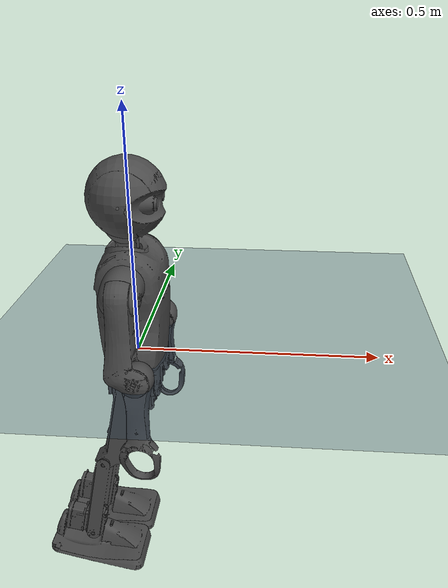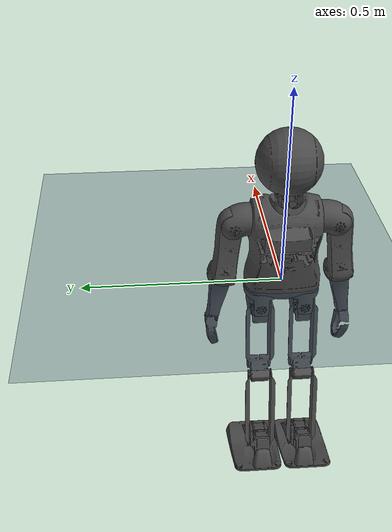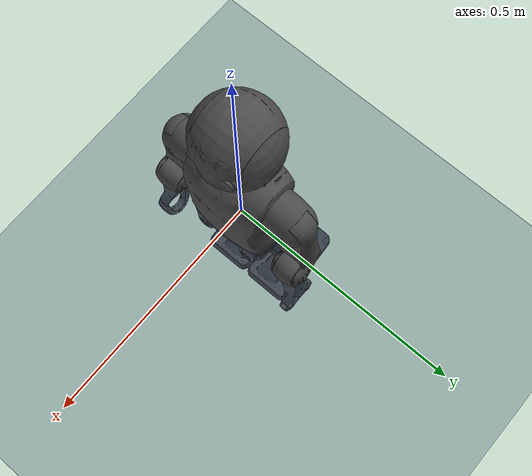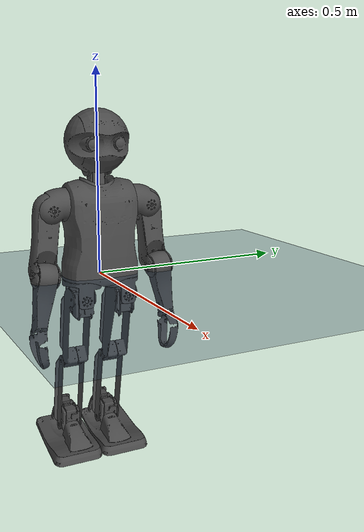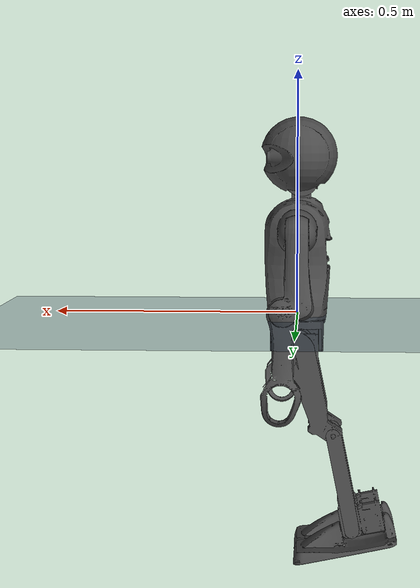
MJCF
<mujoco model="nugus">
	<include file="nugus.xml" />

	<visual>
		<headlight diffuse="0.6 0.6 0.6" ambient="0.3 0.3 0.3" specular="0 0 0"/>
		<rgba haze="0.15 0.25 0.35 1"/>
		<global azimuth="160" elevation="-20"/>
	</visual>

	<asset>
		<texture type="skybox" builtin="gradient" rgb1="0.3 0.5 0.7" rgb2="0 0 0" width="512" height="3072"/>
		<texture type="2d" name="groundplane" builtin="checker" mark="edge" rgb1="0.2 0.3 0.4" rgb2="0.1 0.2 0.3"
			markrgb="0.8 0.8 0.8" width="300" height="300"/>
		<material name="groundplane" texture="groundplane" texuniform="true" texrepeat="5 5" reflectance="0.2"/>
	</asset>

	<worldbody>
		<light pos="0 0 3.5" dir="0 0 -1" directional="true"/>
		<geom name="floor" size="0 0 0.05" pos="0 0 0" type="plane" material="groundplane"/>

	</worldbody>
</mujoco>

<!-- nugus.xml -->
<mujoco model="nugus">
  <compiler angle="radian" meshdir="meshes/nugus"/>
  <default>
        <default class="mx106">
            <position kp="21" forcerange="-8 8" />
            <joint damping="1.7" armature="0.025" frictionloss="0.10" />
        </default>
        <default class="mx64">
            <position kp="12.5" forcerange="-5 5" />
            <joint damping="0.66" armature="0.012" frictionloss="0.09" />
        </default>
		<default class="xm430">
            <position kp="21.1" ctrlrange="-3.141592 3.141592" forcerange="-5 5"/>
            <joint damping="1.084" armature="0.045" frictionloss="0.03"/>
        </default>

    <default class="mx64-14">
            <position kp="12.5" forcerange="-7.3 7.3" />
            <joint damping="0.65" armature="0.012" frictionloss="0.09" />
        </default>

    <default class="mx106-14">
            <position kp="21" forcerange="-10 10" />
            <joint damping="1.7" armature="0.025" frictionloss="0.10" />
        </default>
    <default class="xh540">
            <position kp="21" forcerange="-11.7 11.7" />
            <joint damping="1.7" armature="0.025" frictionloss="0.10" />
        </default>
    </default>
	<option noslip_iterations="1"></option>
  <asset>
    <mesh name="torso_visual" file="torso_visual.stl"/>
    <mesh name="left_hip_yaw_visual" file="left_hip_yaw_visual.stl"/>
    <mesh name="left_hip_roll_visual" file="left_hip_roll_visual.stl"/>
    <mesh name="left_upper_leg_visual" file="left_upper_leg_visual.stl"/>
    <mesh name="left_lower_leg_visual" file="left_lower_leg_visual.stl"/>
    <mesh name="left_ankle_visual" file="left_ankle_visual.stl"/>
    <mesh name="left_foot_visual" file="left_foot_visual.stl"/>
    <mesh name="right_hip_yaw_visual" file="right_hip_yaw_visual.stl"/>
    <mesh name="right_hip_roll_visual" file="right_hip_roll_visual.stl"/>
    <mesh name="right_upper_leg_visual" file="right_upper_leg_visual.stl"/>
    <mesh name="right_lower_leg_visual" file="right_lower_leg_visual.stl"/>
    <mesh name="right_ankle_visual" file="right_ankle_visual.stl"/>
    <mesh name="right_foot_visual" file="right_foot_visual.stl"/>
    <mesh name="right_foot_base_visual" file="right_foot_base_visual.stl"/>
    <mesh name="neck_visual" file="neck_visual.stl"/>
    <mesh name="head_visual" file="head_visual.stl"/>
    <mesh name="right_camera_visual" file="right_camera_visual.stl"/>
    <mesh name="left_shoulder_visual" file="left_shoulder_visual.stl"/>
    <mesh name="left_upper_arm_visual" file="left_upper_arm_visual.stl"/>
    <mesh name="left_lower_arm_visual" file="left_lower_arm_visual.stl"/>
    <mesh name="right_shoulder_visual" file="right_shoulder_visual.stl"/>
    <mesh name="right_upper_arm_visual" file="right_upper_arm_visual.stl"/>
    <mesh name="right_lower_arm_visual" file="right_lower_arm_visual.stl"/>
  </asset>

  <worldbody>
    <body name="torso_2023">

      <freejoint name="root" />
      <site name="torso" />
      <inertial pos="-0.000971341 -7.63301e-05 0.0898493" quat="1 0 0 0" mass="1.83264" diaginertia="0.0154924 0.00592676 0.0131549"/>
    <site name="trunk" pos="0 0 0.09" />
    <geom type="mesh"  density="0" rgba="0.286275 0.286275 0.286275 1" mesh="torso_visual"/>
    <body name="left_hip_yaw" pos="0 0.055 0" quat="1 0 0 0">
      <inertial pos="-0.0021828 -0.00894798 -0.0247563" quat="0.706738 0.705731 0.0325035 -0.0375176" mass="0.0594023" diaginertia="0.00011878 0.000103492 5.24089e-05"/>
      <joint class="mx106-14" name="left_hip_yaw" pos="0 0 0" axis="0 0 1"  />
      <geom type="mesh"  density="0" rgba="0.286275 0.286275 0.286275 1" mesh="left_hip_yaw_visual"/>
      <body name="left_hip_roll" pos="0.0221332 0 -0.0545" quat="0.707105 0 0.707108 0">
        <inertial pos="0.015733 -0.000686158 -0.0217073" quat="0.70707 0.00800622 -0.00800603 0.707053" mass="0.395953" diaginertia="0.000375935 0.000314298 0.000127658"/>
        <joint class="mx106-14" name="left_hip_roll" pos="0 0 0" axis="0 0 1"  />
        <geom type="mesh"  density="0" rgba="0.286275 0.286275 0.286275 1" mesh="left_hip_roll_visual"/>
        <body name="left_hip_pitch" pos="0 0 0" euler="-1.57  0 0.2 ">
          <inertial pos="0.144296 0.0401097 0.000258488" quat="0.48018 0.474915 0.52246 0.520498" mass="0.313357" diaginertia="0.00167304 0.00160068 0.000213115"/>
          <joint class="mx106-14" name="left_hip_pitch" pos="0 0 0" axis="0 0 1"  />
          <geom type="mesh"  density="0" rgba="0.286275 0.286275 0.286275 1" mesh="left_upper_leg_visual"/>
          <body name="left_knee" pos="0.206046 0.0569501 0" euler=" 0 0 0">
            <inertial pos="0.1001 0.00388186 -1.61259e-08" quat="0.500001 0.500001 0.499999 0.499999" mass="0.0893011" diaginertia="0.000408951 0.0003363 9.01254e-05"/>
            <joint class="xh540"  name="left_knee" pos="0 0 0" axis="0 0 1"  />
            <geom type="mesh"  density="0" rgba="0.286275 0.286275 0.286275 1" mesh="left_lower_leg_visual"/>
            <body name="left_ankle_pitch" pos="0.200203 0 0" quat="1 0 0 0">
              <inertial pos="-0.015733 0.0219762 0.000512596" quat="0.508721 0.491668 -0.491137 0.508184" mass="0.329993" diaginertia="0.000265803 0.000265762 0.000157721"/>
              <joint class="mx106-14" name="left_ankle_pitch" pos="0 0 0" axis="0 0 1"  />
              <geom type="mesh"  density="0" rgba="0.286275 0.286275 0.286275 1" mesh="left_ankle_visual"/>
              <body name="left_ankle_roll" pos="0 0 0" quat="0.707105 0.707108 0 0">
                <site name="left_foot"  pos="0.032 0.0 0.02" euler="0 -1.57 0"/>
                <inertial pos="0.0248226 0.00798542 0.033284" quat="0.99979 -0.0089131 -9.26048e-05 -0.0184639" mass="0.245581" diaginertia="0.00134758 0.00108371 0.00033179"/>
                <joint class="mx106-14" name="left_ankle_roll" pos="0 0 0" axis="0 0 1"  />
                <geom type="mesh"  density="0" rgba="0.286275 0.286275 0.286275 1" mesh="left_foot_visual"/>
              </body>
            </body>
          </body>
        </body>
      </body>
    </body>
    <body name="right_hip_yaw" pos="0 -0.055 0" quat="1 0 0 0">
      <inertial pos="-0.00218277 0.0089479 -0.0247564" quat="0.705733 0.706736 0.0375273 -0.0325114" mass="0.0594022" diaginertia="0.000118779 0.000103492 5.24082e-05"/>
      <joint class="mx106-14" name="right_hip_yaw" pos="0 0 0" axis="0 0 1"  />
      <geom type="mesh"  density="0" rgba="0.286275 0.286275 0.286275 1" mesh="right_hip_yaw_visual"/>
      <body name="right_hip_roll" pos="0.0221332 0 -0.0545" quat="0.707105 0 0.707108 0">
        <inertial pos="0.015733 -0.000232251 -0.0218286" quat="0.707049 0.00279235 -0.00279276 0.707153" mass="0.395953" diaginertia="0.000378041 0.000316367 0.000127621"/>
        <joint class="mx106-14" name="right_hip_roll" pos="0 0 0" axis="0 0 1"  />
        <geom type="mesh"  density="0" rgba="0.286275 0.286275 0.286275 1" mesh="right_hip_roll_visual"/>
        <body name="right_hip_pitch" pos="0 0 0" euler="-1.57  0 0.2 ">
          <inertial pos="0.144343 0.0400917 -0.000278506" quat="0.47021 0.473824 0.526501 0.526488" mass="0.313809" diaginertia="0.00167983 0.00160132 0.000207139"/>
          <joint class="mx106-14" name="right_hip_pitch" pos="0 0 0" axis="0 0 1"  />
          <geom type="mesh"  density="0" rgba="0.286275 0.286275 0.286275 1" mesh="right_upper_leg_visual"/>
          <body name="right_knee" pos="0.206046 0.0569501 0"  euler=" 0 0 0">
            <inertial pos="0.100103 0.00388186 1.61259e-08" quat="0.499999 0.499999 0.500001 0.500001" mass="0.0893011" diaginertia="0.000408951 0.0003363 9.01254e-05"/>
            <joint class="xh540" name="right_knee" pos="0 0 0" axis="0 0 1"  />
            <geom type="mesh"  density="0" rgba="0.286275 0.286275 0.286275 1" mesh="right_lower_leg_visual"/>
            <body name="right_ankle_pitch" pos="0.200203 0 0" quat="1 0 0 0">
              <inertial pos="-0.015733 0.0218226 0.000508968" quat="0.51022 0.492773 -0.489643 0.507051" mass="0.329993" diaginertia="0.00026369 0.000263648 0.000157719"/>
              <joint class="mx106-14" name="right_ankle_pitch" pos="0 0 0" axis="0 0 1" limited="false"/>
              <geom type="mesh"  density="0" rgba="0.286275 0.286275 0.286275 1" mesh="right_ankle_visual"/>
              <body name="right_ankle_roll" pos="0 0 0" quat="0.707105 0.707108 0 0">
                <site name="right_foot"  pos="0.032 0.0 0.02"/>
                <inertial pos="0.024823 -0.00798676 0.0332808" quat="0.99979 0.0089119 -9.00788e-05 0.0184638" mass="0.245567" diaginertia="0.00134748 0.00108364 0.000331758"/>
                <joint class="mx106-14" name="right_ankle_roll" pos="0 0 0" axis="0 0 1"  />
                <geom type="mesh"  density="0" rgba="0.286275 0.286275 0.286275 1" mesh="right_foot_visual"/>
                <geom pos="0.038 0 0" quat="0.707105 0 -0.707108 0" type="mesh"  density="0" rgba="0.615686 0.811765 0.929412 1" mesh="right_foot_base_visual"/>
              </body>
            </body>
          </body>
        </body>
      </body>
    </body>
    <body name="neck" pos="-0.008 0 0.20825" quat="1.32679e-06 0 0 -1">
      <inertial pos="-0.000244686 -0.000118134 0.0329091" quat="0.998443 0.0557737 1.07166e-07 -1.91845e-06" mass="0.165011" diaginertia="6.78379e-05 5.68579e-05 3.82813e-05"/>
      <joint class="mx64-14" name="head_yaw" pos="-0.008 0 0.20825" axis="0 0 1"  />
      <geom type="mesh"  density="0" rgba="0.286275 0.286275 0.286275 1" mesh="neck_visual"/>
      <body name="head" pos="-0.00024471 -0.000255294 0.0481" quat="0.499998 0.5 0.5 -0.500002">
        <inertial pos="-0.0665563 -0.0103216 -0.000100617" quat="0.999969 -0.000336797 -0.00449046 0.00648687" mass="0.473503" diaginertia="0.00196866 0.00145321 0.00107438"/>
        <joint class="mx64-14" name="head_pitch" pos="0 0 0" axis="0 0 1"  />
        <geom type="mesh"  density="0" rgba="0.286275 0.286275 0.286275 1" mesh="head_visual"/>
        <geom pos="-0.0648803 -0.0699522 -0.034205" quat="0.508649 0.508651 -0.491199 -0.491197" type="mesh"  density="0" rgba="0.615686 0.811765 0.929412 1" mesh="right_camera_visual"/>
        <site name="camera" pos="-0.06 0 0" />
      </body>
    </body>
    <body name="left_shoulder_pitch" pos="0 0.077 0.17725" euler="-1.57 0 3.14">
      <inertial pos="-3.61374e-05 -0.00254925 0.0287427" quat="0.618495 0.346197 0.615355 0.344891" mass="0.0845502" diaginertia="9.98768e-05 9.09162e-05 7.30289e-05"/>
      <joint class="mx64-14" name="left_shoulder_pitch" pos="0 0 0" axis="0 0 1"  />
      <geom type="mesh"  density="0" rgba="0.286275 0.286275 0.286275 1" mesh="left_shoulder_visual"/>
      <body name="left_shoulder_roll" pos="0 -0.0100012 0.0479124" euler="1.57 -1.57 0.15">
        <inertial pos="0.045902 0.000372495 9.27204e-06" quat="0.346504 0.576301 -0.375287 0.637943" mass="0.29923" diaginertia="0.00098868 0.000637586 0.000573833"/>
        <joint class="mx64-14" name="left_shoulder_roll" pos="0 0 0" axis="0 0 1"  />
        <geom type="mesh"  density="0" rgba="0.286275 0.286275 0.286275 1" mesh="left_upper_arm_visual"/>
        <body name="left_lower_arm" pos="0.1575 -5.57465e-05 0.02695" quat="0.499998 -0.5 0.5 0.500002">
          <inertial pos="-0.000605553 -0.0509966 6.9181e-05" quat="0.568214 0.433479 -0.53189 0.454226" mass="0.287325" diaginertia="0.00115275 0.000789823 0.000530221"/>
          <joint class="mx64-14" name="left_elbow" pos="0 0 0" axis="0 0 1"  />
          <geom type="mesh"  density="0" rgba="0.286275 0.286275 0.286275 1" mesh="left_lower_arm_visual"/>
        </body>
      </body>
    </body>
    <body name="right_shoulder_pitch" pos="0 -0.077 0.17725" euler="-1.57 0 3.14">
      <inertial pos="-3.46247e-05 -0.00254925 -0.0287427" quat="0.346201 0.618498 0.344878 0.615357" mass="0.0845501" diaginertia="9.98771e-05 9.09162e-05 7.3029e-05"/>
      <joint class="mx64-14" name="right_shoulder_pitch" pos="0 -0.0106 0.1616" axis="0 0 1"  />
      <geom type="mesh"  density="0" rgba="0.286275 0.286275 0.286275 1" mesh="right_shoulder_visual"/>
      <body name="right_shoulder_roll" pos="0 -0.0100012 -0.0479124" euler="1.57 -1.57 -0.15">
        <inertial pos="0.0458986 -0.000371241 0.000118834" quat="0.327762 0.587042 -0.375964 0.637656" mass="0.299218" diaginertia="0.000988599 0.000640993 0.000570263"/>
        <joint class="mx64-14" name="right_shoulder_roll" pos="0 0 0" axis="0 0 -1"  />
        <geom type="mesh"  density="0" rgba="0.286275 0.286275 0.286275 1" mesh="right_upper_arm_visual"/>
        <body name="right_lower_arm" pos="0.1575 5.57465e-05 0.02695" quat="0.499998 -0.5 0.5 0.500002">
          <inertial pos="-0.00060488 -0.0510002 -6.85101e-05" quat="0.456626 0.549865 -0.476171 0.512252" mass="0.28735" diaginertia="0.00115298 0.000782489 0.000537795"/>
          <joint class="mx64-14" name="right_elbow" pos="0 0 0" axis="0 0 1"  />
          <geom type="mesh"  density="0" rgba="0.286275 0.286275 0.286275 1" mesh="right_lower_arm_visual"/>
        </body>
      </body>
    </body>
    </body>
  </worldbody>
  <sensor>
        <gyro site="torso" name="gyro" />
        <accelerometer site="torso" name="accelerometer" />
    </sensor>
  <contact>
    <exclude body1="left_hip_yaw" body2="left_hip_pitch"/>
    <exclude body1="right_hip_yaw" body2="right_hip_pitch"/>

        <exclude body1="left_ankle_roll" body2="left_knee"/>
    <exclude body1="right_ankle_roll" body2="right_knee"/>

      <exclude body1="left_shoulder_roll" body2="torso_2023"/>
    <exclude body1="right_shoulder_roll" body2="torso_2023"/>
  </contact>

  <actuator>
        <position class="mx106-14" name="left_hip_roll" joint="left_hip_roll" ctrlrange="-0.785398 1.5708" />
        <position class="mx106-14" name="left_hip_pitch" joint="left_hip_pitch" ctrlrange="-2.77 0.79" />
        <position class="xh540" name="left_knee" joint="left_knee" ctrlrange="-0.2 2.8" />
        <position class="mx106-14" name="left_ankle_pitch" joint="left_ankle_pitch" ctrlrange="-1.42 0.37" />
        <position class="mx106-14" name="left_ankle_roll" joint="left_ankle_roll" ctrlrange="-0.785398 0.785398" />
        <position class="mx106-14" name="right_hip_roll" joint="right_hip_roll" ctrlrange="-0.785398 1.5708" />
        <position class="mx106-14" name="right_hip_pitch" joint="right_hip_pitch" ctrlrange="-2.77 0.79" />
        <position class="xh540" name="right_knee" joint="right_knee" ctrlrange="-0.2 2.8" />
        <position class="mx106-14" name="right_ankle_pitch" joint="right_ankle_pitch" ctrlrange="-1.42 0.37" />
        <position class="mx106-14" name="right_ankle_roll" joint="right_ankle_roll" ctrlrange="-0.785398 0.785398" />

        <position class="mx64-14" name="head_yaw" joint="head_yaw" ctrlrange="-1.5708 1.5708" />
        <position class="mx64-14" name="head_pitch" joint="head_pitch" ctrlrange="0 1.5708" />
        <position class="mx106-14" name="left_hip_yaw" joint="left_hip_yaw" ctrlrange="-1.309 0.524" />
        <position class="mx106-14" name="right_hip_yaw" joint="right_hip_yaw" ctrlrange="-1.309 0.524" />
        <position class="mx64-14" name="left_shoulder_pitch" joint="left_shoulder_pitch" ctrlrange="-3.14159 3.14159" />
        <position class="mx64-14" name="left_elbow" joint="left_elbow" ctrlrange="-3.14159 0" />
        <position class="mx64-14" name="right_shoulder_pitch" joint="right_shoulder_pitch" ctrlrange="-3.14159 3.14159" />
        <position class="mx64-14" name="right_elbow" joint="right_elbow" ctrlrange="-3.14159 0" />
        <position class="mx64-14" name="left_shoulder_roll" joint="left_shoulder_roll" ctrlrange="0 3.1416"/>
        <position class="mx64-14" name="right_shoulder_roll" joint="right_shoulder_roll" ctrlrange="0 3.1416" />

    </actuator>
</mujoco>
